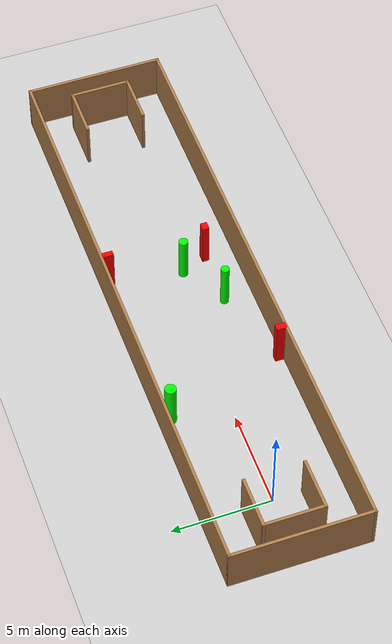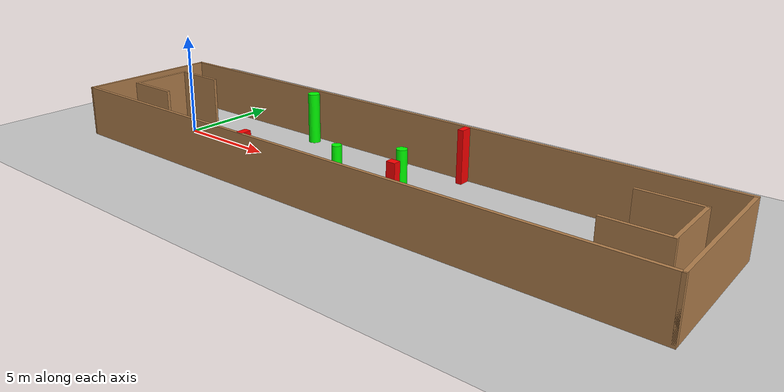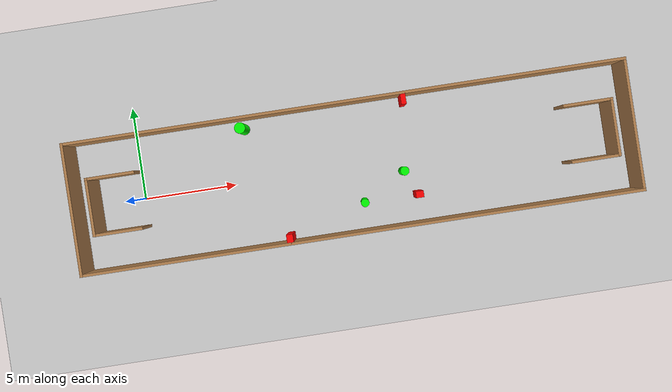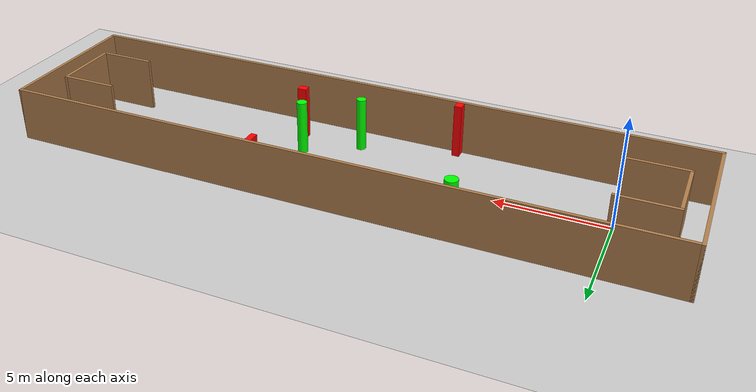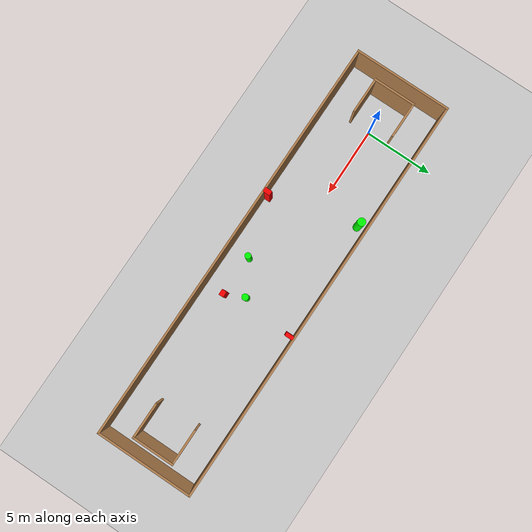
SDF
<sdf version="1.7">
 <world name="default">
  <light name="sun" type="directional">
   <pose>0 0 10 0 -0 0</pose>
   <diffuse>0.8 0.8 0.8 1</diffuse>
   <specular>0.2 0.2 0.2 1</specular>
   <attenuation>
    <range>1000</range>
    <constant>0.9</constant>
    <linear>0.01</linear>
    <quadratic>0.001</quadratic>
   </attenuation>
   <direction>-0.5 0.1 -0.9</direction>
   <spot><inner_angle>0</inner_angle><outer_angle>0</outer_angle><falloff>0</falloff></spot>
  </light>
  <model name="ground_plane">
   <static>1</static>
   <link name="link">
    <collision name="collision">
     <geometry><plane><normal>0 0 1</normal><size>100 100</size></plane></geometry>
     <surface>
      <contact><collide_bitmask>65535</collide_bitmask></contact>
      <friction><ode><mu>100</mu><mu2>50</mu2></ode></friction>
     </surface>
    </collision>
    <visual name="visual">
     <cast_shadows>0</cast_shadows>
     <geometry><plane><normal>0 0 1</normal><size>100 100</size></plane></geometry>
     <material>
      <script><uri>file://media/materials/scripts/gazebo.material</uri><name>Gazebo/Grey</name></script>
     </material>
    </visual>
   </link>
  </model>
  <gravity>0 0 -9.8</gravity>
  <magnetic_field>6e-06 2.3e-05 -4.2e-05</magnetic_field>
  <atmosphere type="adiabatic"/>
  <physics type="ode">
   <max_step_size>0.001</max_step_size>
   <real_time_factor>1</real_time_factor>
   <real_time_update_rate>1000</real_time_update_rate>
  </physics>
  <scene><ambient>0.4 0.4 0.4 1</ambient><background>0.7 0.7 0.7 1</background><shadows>1</shadows></scene>
  <spherical_coordinates>
   <surface_model>EARTH_WGS84</surface_model>
   <latitude_deg>0</latitude_deg>
   <longitude_deg>0</longitude_deg>
   <elevation>0</elevation>
   <heading_deg>0</heading_deg>
  </spherical_coordinates>
  <model name="my_base_walls">
   <link name="Wall_0">
    <collision name="Wall_0_Collision">
     <geometry><box><size>7.15 0.15 2.5</size></box></geometry>
     <pose>0 0 1.25 0 -0 0</pose>
    </collision>
    <visual name="Wall_0_Visual">
     <pose>0 0 1.25 0 -0 0</pose>
     <geometry><box><size>7.15 0.15 2.5</size></box></geometry>
     <material>
      <script><uri>file://media/materials/scripts/gazebo.material</uri><name>Gazebo/Wood</name></script>
      <ambient>1 1 1 1</ambient>
     </material>
     <meta><layer>0</layer></meta>
    </visual>
    <pose>-15 0 0 0 -0 1.5708</pose>
   </link>
   <link name="Wall_10">
    <collision name="Wall_10_Collision">
     <geometry><box><size>2.65 0.15 2.5</size></box></geometry>
     <pose>0 0 1.25 0 -0 0</pose>
    </collision>
    <visual name="Wall_10_Visual">
     <pose>0 0 1.25 0 -0 0</pose>
     <geometry><box><size>2.65 0.15 2.5</size></box></geometry>
     <material>
      <script><uri>file://media/materials/scripts/gazebo.material</uri><name>Gazebo/Wood</name></script>
      <ambient>1 1 1 1</ambient>
     </material>
     <meta><layer>0</layer></meta>
    </visual>
    <pose>-12.75 -1.5 0 0 -0 0</pose>
   </link>
   <link name="Wall_12">
    <collision name="Wall_12_Collision">
     <geometry><box><size>2.65 0.15 2.5</size></box></geometry>
     <pose>0 0 1.25 0 -0 0</pose>
    </collision>
    <visual name="Wall_12_Visual">
     <pose>0 0 1.25 0 -0 0</pose>
     <geometry><box><size>2.65 0.15 2.5</size></box></geometry>
     <material>
      <script><uri>file://media/materials/scripts/gazebo.material</uri><name>Gazebo/Wood</name></script>
      <ambient>1 1 1 1</ambient>
     </material>
     <meta><layer>0</layer></meta>
    </visual>
    <pose>-12.75 1.5 0 0 -0 0</pose>
   </link>
   <link name="Wall_14">
    <collision name="Wall_14_Collision">
     <geometry><box><size>3.15 0.15 2.5</size></box></geometry>
     <pose>0 0 1.25 0 -0 0</pose>
    </collision>
    <visual name="Wall_14_Visual">
     <pose>0 0 1.25 0 -0 0</pose>
     <geometry><box><size>3.15 0.15 2.5</size></box></geometry>
     <material>
      <script><uri>file://media/materials/scripts/gazebo.material</uri><name>Gazebo/Wood</name></script>
      <ambient>1 1 1 1</ambient>
     </material>
     <meta><layer>0</layer></meta>
    </visual>
    <pose>14 0 0 0 -0 -1.5708</pose>
   </link>
   <link name="Wall_15">
    <collision name="Wall_15_Collision">
     <geometry><box><size>2.65 0.15 2.5</size></box></geometry>
     <pose>0 0 1.25 0 -0 0</pose>
    </collision>
    <visual name="Wall_15_Visual">
     <pose>0 0 1.25 0 -0 0</pose>
     <geometry><box><size>2.65 0.15 2.5</size></box></geometry>
     <material>
      <script><uri>file://media/materials/scripts/gazebo.material</uri><name>Gazebo/Wood</name></script>
      <ambient>1 1 1 1</ambient>
     </material>
     <meta><layer>0</layer></meta>
    </visual>
    <pose>12.75 -1.5 0 0 -0 3.14159</pose>
   </link>
   <link name="Wall_17">
    <collision name="Wall_17_Collision">
     <geometry><box><size>2.65 0.15 2.5</size></box></geometry>
     <pose>0 0 1.25 0 -0 0</pose>
    </collision>
    <visual name="Wall_17_Visual">
     <pose>0 0 1.25 0 -0 0</pose>
     <geometry><box><size>2.65 0.15 2.5</size></box></geometry>
     <material>
      <script><uri>file://media/materials/scripts/gazebo.material</uri><name>Gazebo/Wood</name></script>
      <ambient>1 1 1 1</ambient>
     </material>
     <meta><layer>0</layer></meta>
    </visual>
    <pose>12.75 1.5 0 0 -0 3.14159</pose>
   </link>
   <link name="Wall_2">
    <collision name="Wall_2_Collision">
     <geometry><box><size>30.15 0.15 2.5</size></box></geometry>
     <pose>0 0 1.25 0 -0 0</pose>
    </collision>
    <visual name="Wall_2_Visual">
     <pose>0 0 1.25 0 -0 0</pose>
     <geometry><box><size>30.15 0.15 2.5</size></box></geometry>
     <material>
      <script><uri>file://media/materials/scripts/gazebo.material</uri><name>Gazebo/Wood</name></script>
      <ambient>1 1 1 1</ambient>
     </material>
     <meta><layer>0</layer></meta>
    </visual>
    <pose>-0 -3.5 0 0 -0 0</pose>
   </link>
   <link name="Wall_4">
    <collision name="Wall_4_Collision">
     <geometry><box><size>30.15 0.15 2.5</size></box></geometry>
     <pose>0 0 1.25 0 -0 0</pose>
    </collision>
    <visual name="Wall_4_Visual">
     <pose>0 0 1.25 0 -0 0</pose>
     <geometry><box><size>30.15 0.15 2.5</size></box></geometry>
     <material>
      <script><uri>file://media/materials/scripts/gazebo.material</uri><name>Gazebo/Wood</name></script>
      <ambient>1 1 1 1</ambient>
     </material>
     <meta><layer>0</layer></meta>
    </visual>
    <pose>-0 3.5 0 0 -0 0</pose>
   </link>
   <link name="Wall_6">
    <collision name="Wall_6_Collision">
     <geometry><box><size>7.15 0.15 2.5</size></box></geometry>
     <pose>0 0 1.25 0 -0 0</pose>
    </collision>
    <visual name="Wall_6_Visual">
     <pose>0 0 1.25 0 -0 0</pose>
     <geometry><box><size>7.15 0.15 2.5</size></box></geometry>
     <material>
      <script><uri>file://media/materials/scripts/gazebo.material</uri><name>Gazebo/Wood</name></script>
      <ambient>1 1 1 1</ambient>
     </material>
     <meta><layer>0</layer></meta>
    </visual>
    <pose>15 0 0 0 -0 -1.5708</pose>
   </link>
   <link name="Wall_9">
    <collision name="Wall_9_Collision">
     <geometry><box><size>3.15 0.15 2.5</size></box></geometry>
     <pose>0 0 1.25 0 -0 0</pose>
    </collision>
    <visual name="Wall_9_Visual">
     <pose>0 0 1.25 0 -0 0</pose>
     <geometry><box><size>3.15 0.15 2.5</size></box></geometry>
     <material>
      <script><uri>file://media/materials/scripts/gazebo.material</uri><name>Gazebo/Wood</name></script>
      <ambient>1 1 1 1</ambient>
     </material>
     <meta><layer>0</layer></meta>
    </visual>
    <pose>-14 0 0 0 -0 -1.5708</pose>
   </link>
   <static>1</static>
   <pose>11.5 0 0 0 -0 0</pose>
  </model>
  <model name="cylinder1">
   <static>1</static>
   <link name="link">
    <inertial>
     <mass>1</mass>
     <inertia><ixx>0.5</ixx><ixy>0</ixy><ixz>0</ixz><iyy>0.5</iyy><iyz>0</iyz><izz>1</izz></inertia>
    </inertial>
    <collision name="collision">
     <geometry><cylinder><radius>0.2903135882514476</radius><length>2.5</length></cylinder></geometry>
    </collision>
    <visual name="visual">
     <geometry><cylinder><radius>0.2903135882514476</radius><length>2.5</length></cylinder></geometry>
     <material>
      <ambient>0 1 0 1</ambient>
      <diffuse>0 1 0 1</diffuse>
      <specular>0.1 0.1 0.1 1</specular>
      <emissive>0 0 0 0</emissive>
     </material>
    </visual>
   </link>
   <pose>5.927461695442425 2.940527860470622 1.25 0 0 0</pose>
  </model>
  <model name="cylinder2">
   <static>1</static>
   <link name="link">
    <inertial>
     <mass>1</mass>
     <inertia><ixx>0.5</ixx><ixy>0</ixy><ixz>0</ixz><iyy>0.5</iyy><iyz>0</iyz><izz>1</izz></inertia>
    </inertial>
    <collision name="collision">
     <geometry><cylinder><radius>0.21664048374792144</radius><length>2.5</length></cylinder></geometry>
    </collision>
    <visual name="visual">
     <geometry><cylinder><radius>0.21664048374792144</radius><length>2.5</length></cylinder></geometry>
     <material>
      <ambient>0 1 0 1</ambient>
      <diffuse>0 1 0 1</diffuse>
      <specular>0.1 0.1 0.1 1</specular>
      <emissive>0 0 0 0</emissive>
     </material>
    </visual>
   </link>
   <pose>11.861873259906545 -1.9590732300340499 1.25 0 0 0</pose>
  </model>
  <model name="cylinder3">
   <static>1</static>
   <link name="link">
    <inertial>
     <mass>1</mass>
     <inertia><ixx>0.5</ixx><ixy>0</ixy><ixz>0</ixz><iyy>0.5</iyy><iyz>0</iyz><izz>1</izz></inertia>
    </inertial>
    <collision name="collision">
     <geometry><cylinder><radius>0.23403919588628452</radius><length>2.5</length></cylinder></geometry>
    </collision>
    <visual name="visual">
     <geometry><cylinder><radius>0.23403919588628452</radius><length>2.5</length></cylinder></geometry>
     <material>
      <ambient>0 1 0 1</ambient>
      <diffuse>0 1 0 1</diffuse>
      <specular>0.1 0.1 0.1 1</specular>
      <emissive>0 0 0 0</emissive>
     </material>
    </visual>
   </link>
   <pose>14.177729311021723 -0.6113345036770927 1.25 0 0 0</pose>
  </model>
  <model name="box1">
   <static>1</static>
   <link name="link">
    <inertial>
     <mass>1</mass>
     <inertia><ixx>0.083</ixx><ixy>0</ixy><ixz>0</ixz><iyy>0.083</iyy><iyz>0</iyz><izz>0.083</izz></inertia>
    </inertial>
    <collision name="collision">
     <geometry><box><size>0.3450117559975947 0.5130265861438047 2.5</size></box></geometry>
    </collision>
    <visual name="visual">
     <geometry><box><size>0.3450117559975947 0.5130265861438047 2.5</size></box></geometry>
     <material>
      <ambient>1 0 0 1</ambient>
      <diffuse>1 0 0 1</diffuse>
      <specular>0.1 0.1 0.1 1</specular>
      <emissive>0 0 0 0</emissive>
     </material>
    </visual>
    <sensor name="my_contact" type="contact">
     <contact><collision>box_collision</collision><topic>__default_topic__</topic></contact>
    </sensor>
   </link>
   <pose>7.657474643139819 -3.2528390340899276 1.25 0 0 0</pose>
  </model>
  <model name="box2">
   <static>1</static>
   <link name="link">
    <inertial>
     <mass>1</mass>
     <inertia><ixx>0.083</ixx><ixy>0</ixy><ixz>0</ixz><iyy>0.083</iyy><iyz>0</iyz><izz>0.083</izz></inertia>
    </inertial>
    <collision name="collision">
     <geometry><box><size>0.41961981592011455 0.345479741638123 2.5</size></box></geometry>
    </collision>
    <visual name="visual">
     <geometry><box><size>0.41961981592011455 0.345479741638123 2.5</size></box></geometry>
     <material>
      <ambient>1 0 0 1</ambient>
      <diffuse>1 0 0 1</diffuse>
      <specular>0.1 0.1 0.1 1</specular>
      <emissive>0 0 0 0</emissive>
     </material>
    </visual>
    <sensor name="my_contact" type="contact">
     <contact><collision>box_collision</collision><topic>__default_topic__</topic></contact>
    </sensor>
   </link>
   <pose>14.774651468436648 -1.9477456510332092 1.25 0 0 0</pose>
  </model>
  <model name="box3">
   <static>1</static>
   <link name="link">
    <inertial>
     <mass>1</mass>
     <inertia><ixx>0.083</ixx><ixy>0</ixy><ixz>0</ixz><iyy>0.083</iyy><iyz>0</iyz><izz>0.083</izz></inertia>
    </inertial>
    <collision name="collision">
     <geometry><box><size>0.2757126417336223 0.5739495084154936 2.5</size></box></geometry>
    </collision>
    <visual name="visual">
     <geometry><box><size>0.2757126417336223 0.5739495084154936 2.5</size></box></geometry>
     <material>
      <ambient>1 0 0 1</ambient>
      <diffuse>1 0 0 1</diffuse>
      <specular>0.1 0.1 0.1 1</specular>
      <emissive>0 0 0 0</emissive>
     </material>
    </visual>
    <sensor name="my_contact" type="contact">
     <contact><collision>box_collision</collision><topic>__default_topic__</topic></contact>
    </sensor>
   </link>
   <pose>14.666791699382737 3.164202032800352 1.25 0 0 0</pose>
  </model>
 </world>
</sdf>
